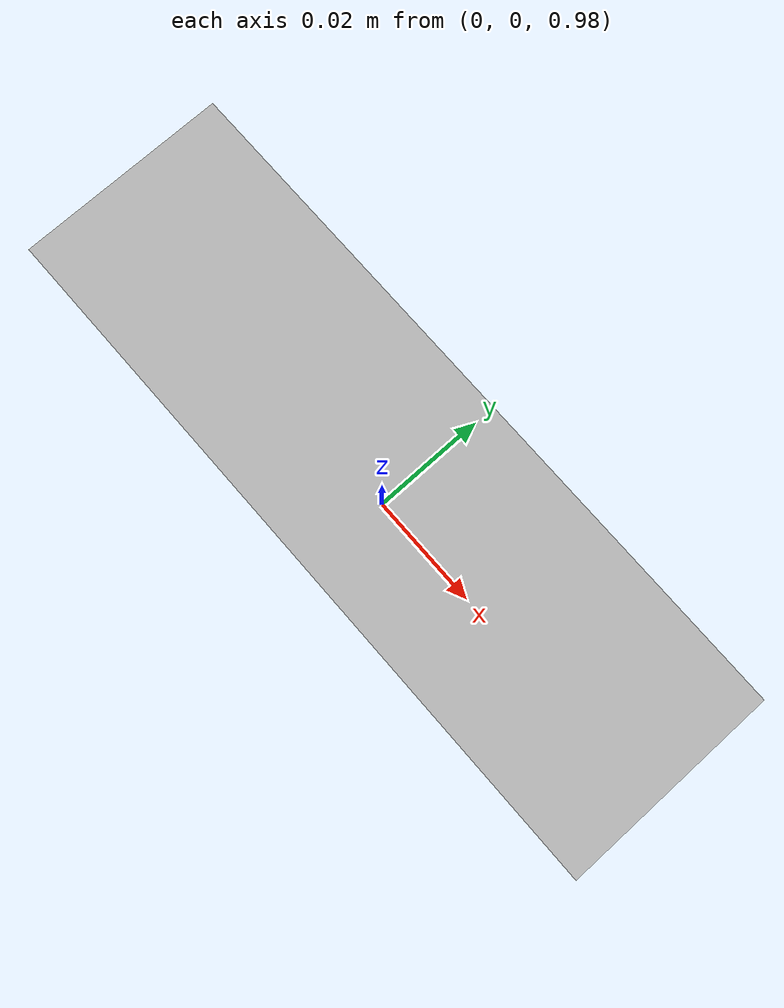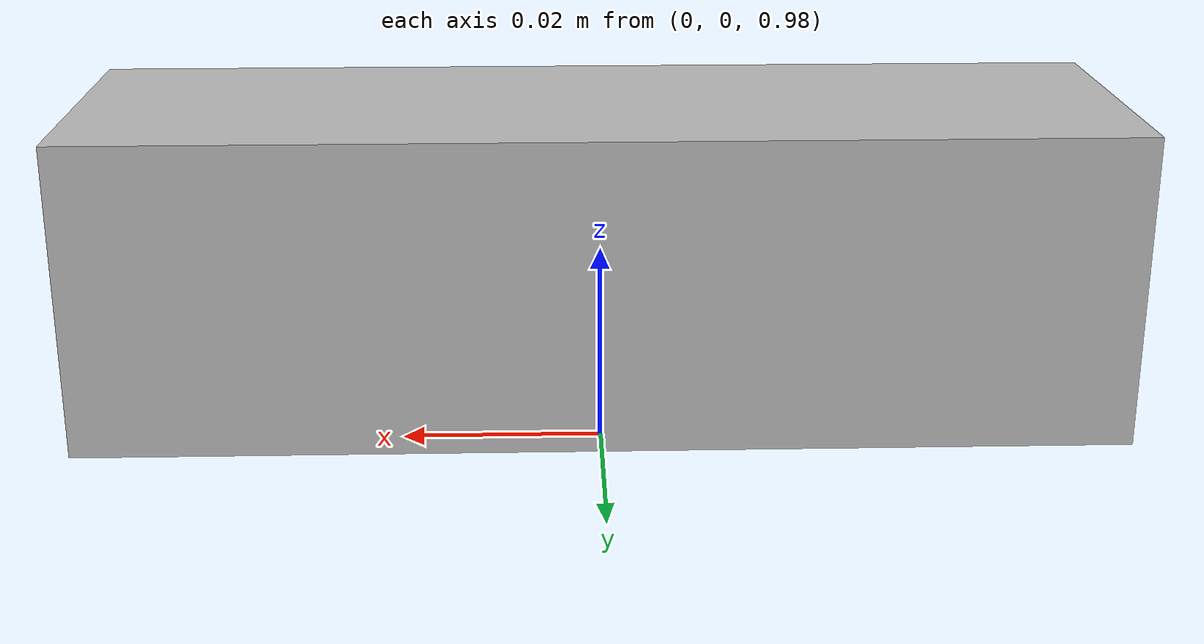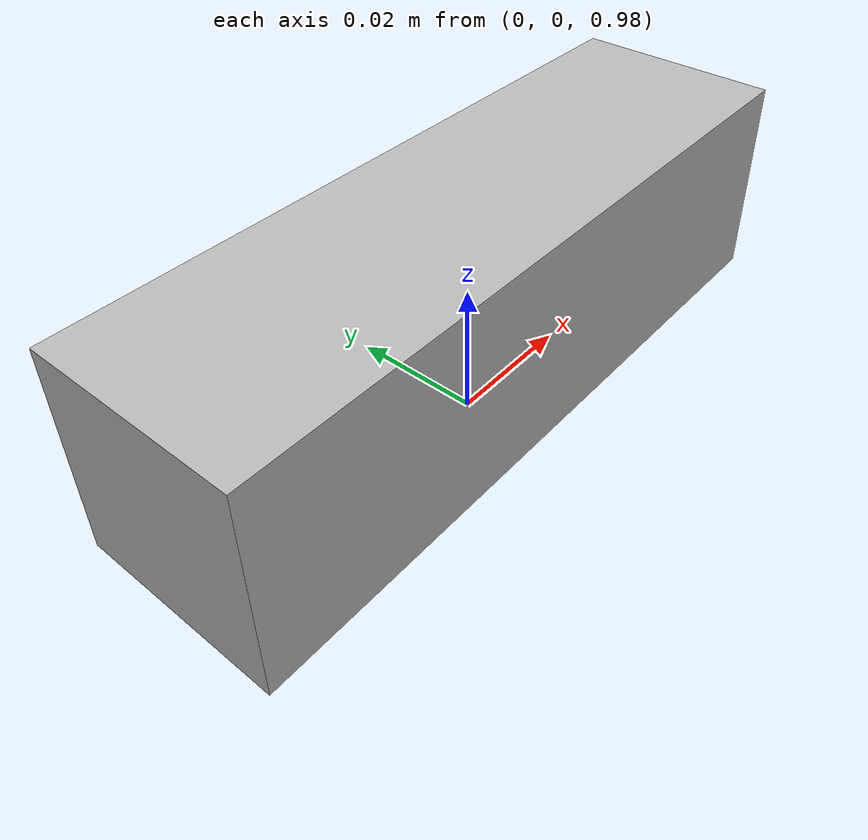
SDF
<?xml version="1.0" ?>
<sdf version="1.8">
  <world name="realsense_test">
    <physics name="ode" type="ode">
      <engine>
        <solver>
          <island_threads>4</island_threads>
        </solver>
      </engine>
    </physics>

    <scene>
      <ambient>0.4 0.4 0.4 1.0</ambient>
      <background>0.7 0.7 0.7 1.0</background>
    </scene>

    <model name="ground_plane">
      <static>true</static>
      <link name="link">
        <collision name="collision">
          <geometry>
            <plane>
              <normal>0 0 1</normal>
              <size>100 100</size>
            </plane>
          </geometry>
        </collision>
        <visual name="visual">
          <geometry>
            <plane>
              <normal>0 0 1</normal>
              <size>100 100</size>
            </plane>
          </geometry>
          <material>
            <ambient>0.8 0.8 0.8 1</ambient>
            <diffuse>0.8 0.8 0.8 1</diffuse>
            <specular>0.8 0.8 0.8 1</specular>
          </material>
        </visual>
      </link>
    </model>

    <model name="realsense_camera">
      <pose>0 0 1 0 0 0</pose>
      <link name="link">
        <visual name="visual">
          <geometry>
            <box>
              <size>0.1 0.03 0.03</size>
            </box>
          </geometry>
        </visual>

        <sensor name="depth_camera" type="depth">
          <pose>0 0 0 0 0 0</pose>
          <update_rate>30</update_rate>
          <camera>
            <horizontal_fov>1.047</horizontal_fov>
            <image>
              <width>640</width>
              <height>480</height>
              <format>R_FLOAT32</format>
            </image>
            <clip>
              <near>0.1</near>
              <far>10</far>
            </clip>
          </camera>
        </sensor>

        <sensor name="color_camera" type="camera">
          <pose>0 0 0 0 0 0</pose>
          <update_rate>30</update_rate>
          <camera>
            <horizontal_fov>1.047</horizontal_fov>
            <image>
              <width>640</width>
              <height>480</height>
              <format>R8G8B8</format>
            </image>
            <clip>
              <near>0.1</near>
              <far>10</far>
            </clip>
          </camera>
        </sensor>

        <sensor name="ired1_camera" type="camera">
          <pose>0 0 0 0 0 0</pose>
          <update_rate>30</update_rate>
          <camera>
            <horizontal_fov>1.047</horizontal_fov>
            <image>
              <width>640</width>
              <height>480</height>
              <format>L8</format>
            </image>
            <clip>
              <near>0.1</near>
              <far>10</far>
            </clip>
          </camera>
        </sensor>

        <sensor name="ired2_camera" type="camera">
          <pose>0 0 0 0 0 0</pose>
          <update_rate>30</update_rate>
          <camera>
            <horizontal_fov>1.047</horizontal_fov>
            <image>
              <width>640</width>
              <height>480</height>
              <format>L8</format>
            </image>
            <clip>
              <near>0.1</near>
              <far>10</far>
            </clip>
          </camera>
        </sensor>
      </link>

      <plugin filename="librealsense_gazebo_plugin.so" name="gz::realsense_gazebo_plugin::GazeboRosRealsense">
        <prefix>realsense</prefix>
        <depthUpdateRate>30.0</depthUpdateRate>
        <colorUpdateRate>30.0</colorUpdateRate>
        <infraredUpdateRate>30.0</infraredUpdateRate>
        <depthTopicName>depth/image_raw</depthTopicName>
        <colorTopicName>color/image_raw</colorTopicName>
        <infrared1TopicName>infrared1/image_raw</infrared1TopicName>
        <infrared2TopicName>infrared2/image_raw</infrared2TopicName>
        <colorOpticalframeName>realsense_color_optical_frame</colorOpticalframeName>
        <depthOpticalframeName>realsense_depth_optical_frame</depthOpticalframeName>
        <infrared1OpticalframeName>realsense_ired1_optical_frame</infrared1OpticalframeName>
        <infrared2OpticalframeName>realsense_ired2_optical_frame</infrared2OpticalframeName>
        <rangeMinDepth>0.2</rangeMinDepth>
        <rangeMaxDepth>10.0</rangeMaxDepth>
        <pointCloud>false</pointCloud>
      </plugin>
    </model>

    <light type="directional" name="sun">
      <cast_shadows>true</cast_shadows>
      <pose>0 0 10 0 0 0</pose>
      <diffuse>0.8 0.8 0.8 1</diffuse>
      <specular>0.2 0.2 0.2 1</specular>
      <attenuation>
        <range>1000</range>
        <constant>0.9</constant>
        <linear>0.01</linear>
        <quadratic>0.001</quadratic>
      </attenuation>
      <direction>-0.5 0.1 -0.9</direction>
    </light>
  </world>
</sdf>
